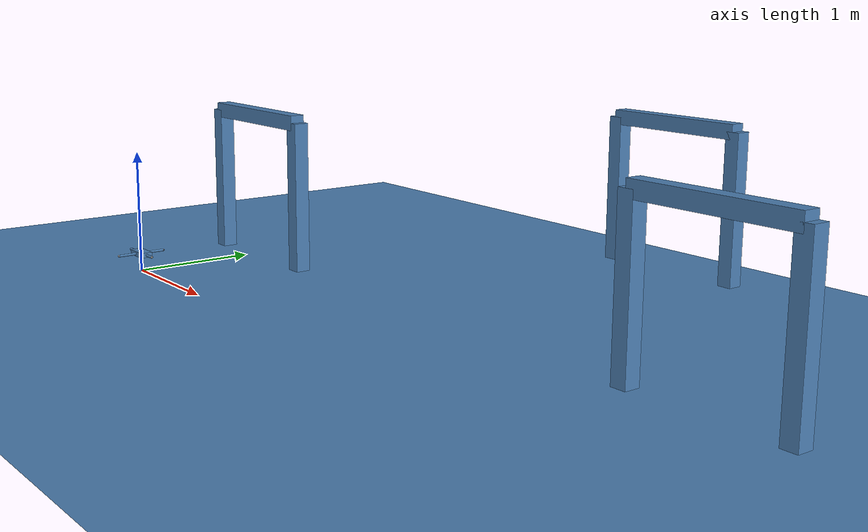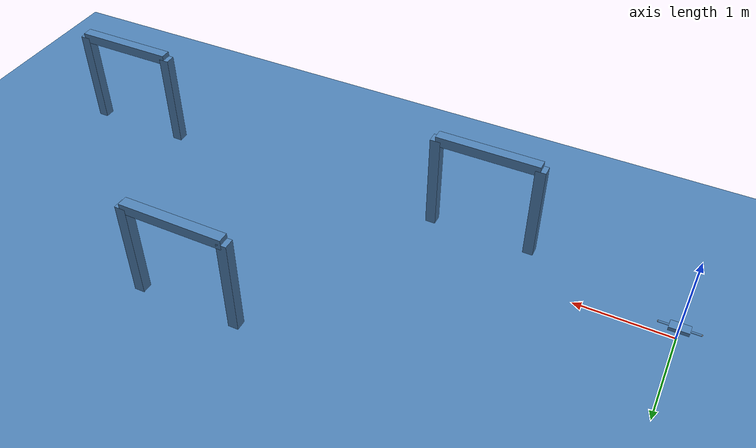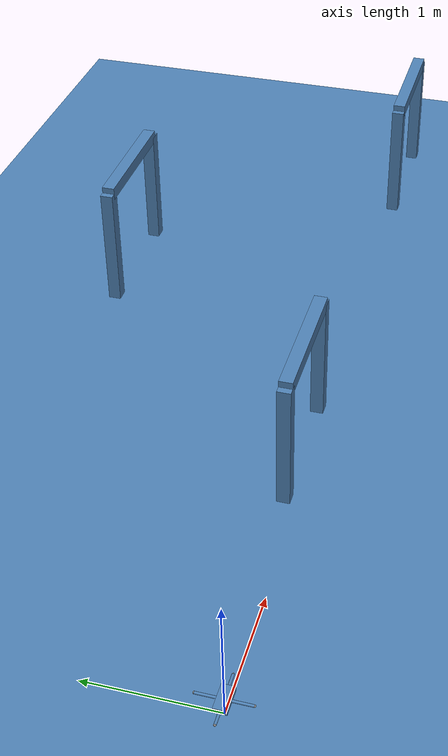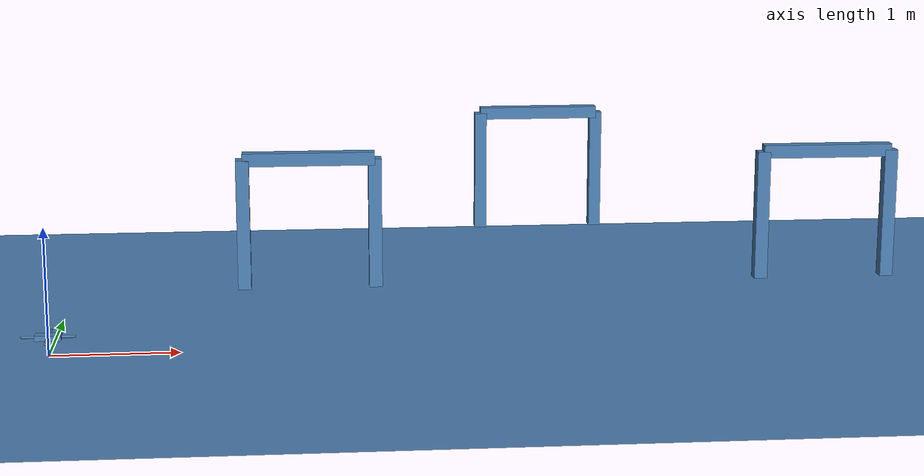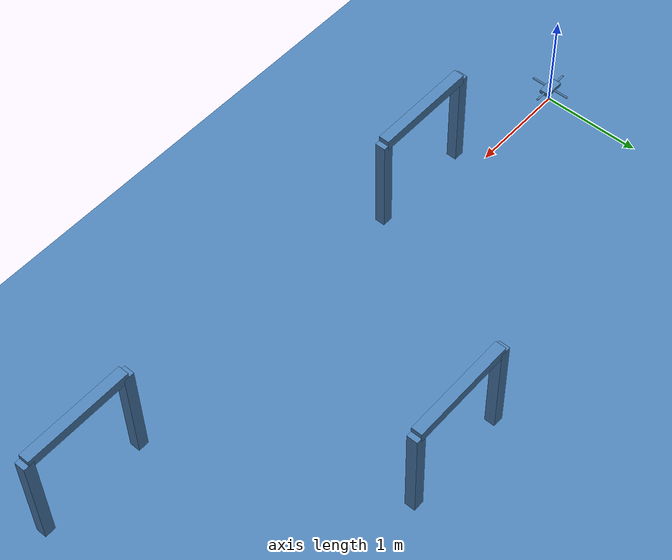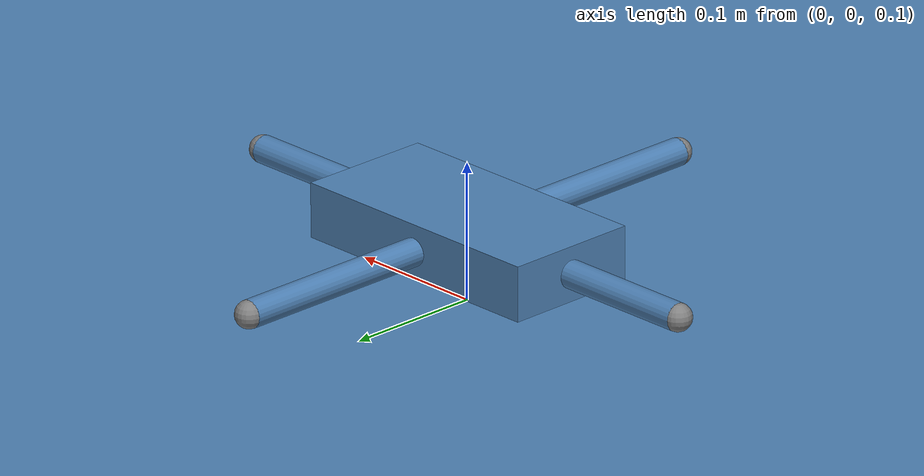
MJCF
<mujoco model="gate_crossing">
  <compiler angle="radian" meshdir="." autolimits="true"/>

  <option timestep="0.002" iterations="1" ls_iterations="4">
    <flag eulerdamp="disable"/>
  </option>

  <default>
    <joint armature="0.001" damping="0.01" limited="true"/>
    <geom contype="0" conaffinity="0" friction="0.3 0.005 0.0001" rgba="0.3 0.5 0.7 1"/>
  </default>

  <asset>
    <texture type="skybox" builtin="gradient" rgb1="0.6 0.8 1.0" rgb2="0.2 0.4 0.8" width="512" height="512"/>
    <texture name="grid" type="2d" builtin="checker" rgb1="0.9 0.9 0.9" rgb2="0.7 0.7 0.7" width="512" height="512"/>
    <material name="grid_mat" texture="grid" texrepeat="20 20" reflectance="0.1"/>
    <material name="gate_mat" rgba="0.2 0.6 0.9 0.8"/>
    <material name="goal_mat" rgba="0.2 0.8 0.2 0.5"/>
  </asset>

  <worldbody>
    <light directional="true" diffuse="0.8 0.8 0.8" specular="0.3 0.3 0.3" pos="0 0 5" dir="0 0 -1"/>
    <geom name="floor" type="plane" size="50 50 0.1" material="grid_mat"/>

    <!-- Gate 1 -->
    <body name="gate1" pos="2.0 0.0 1.0">
      <geom name="gate1_top" type="box" size="0.5 0.05 0.05" material="gate_mat" pos="0.0 0.0 0.5"/>
      <geom name="gate1_left" type="box" size="0.05 0.05 0.5" material="gate_mat" pos="-0.5 0.0 0.0"/>
      <geom name="gate1_right" type="box" size="0.05 0.05 0.5" material="gate_mat" pos="0.5 0.0 0.0"/>
    </body>

    <!-- Gate 2 -->
    <body name="gate2" pos="4.0 2.0 1.0">
      <geom name="gate2_top" type="box" size="0.5 0.05 0.05" material="gate_mat" pos="0.0 0.0 0.5"/>
      <geom name="gate2_left" type="box" size="0.05 0.05 0.5" material="gate_mat" pos="-0.5 0.0 0.0"/>
      <geom name="gate2_right" type="box" size="0.05 0.05 0.5" material="gate_mat" pos="0.5 0.0 0.0"/>
    </body>

    <!-- Gate 3 -->
    <body name="gate3" pos="6.0 0.0 1.0">
      <geom name="gate3_top" type="box" size="0.5 0.05 0.05" material="gate_mat" pos="0.0 0.0 0.5"/>
      <geom name="gate3_left" type="box" size="0.05 0.05 0.5" material="gate_mat" pos="-0.5 0.0 0.0"/>
      <geom name="gate3_right" type="box" size="0.05 0.05 0.5" material="gate_mat" pos="0.5 0.0 0.0"/>
    </body>

    <!-- Quadrotor -->
    <body name="quadrotor" pos="0.0 0.0 0.15">
      <freejoint name="root"/>
      <geom name="body_geom" type="box" size="0.1 0.05 0.02" mass="0.75"/>

      <body name="arm1" pos="0.1 0.0 0.0">
        <geom name="arm1_geom" type="cylinder" size="0.01 0.1" euler="0 1.5708 0" mass="0.05"/>
        <site name="motor1" pos="0.1 0.0 0.0" size="0.01"/>
      </body>
      <body name="arm2" pos="-0.1 0.0 0.0">
        <geom name="arm2_geom" type="cylinder" size="0.01 0.1" euler="0 1.5708 0" mass="0.05"/>
        <site name="motor2" pos="-0.1 0.0 0.0" size="0.01"/>
      </body>
      <body name="arm3" pos="0.0 0.1 0.0">
        <geom name="arm3_geom" type="cylinder" size="0.01 0.1" euler="1.5708 0 0" mass="0.05"/>
        <site name="motor3" pos="0.0 0.1 0.0" size="0.01"/>
      </body>
      <body name="arm4" pos="0.0 -0.1 0.0">
        <geom name="arm4_geom" type="cylinder" size="0.01 0.1" euler="1.5708 0 0" mass="0.05"/>
        <site name="motor4" pos="0.0 -0.1 0.0" size="0.01"/>
      </body>

      <site name="rangefinder" pos="0.0 0.0 0.0" zaxis="0 0 -1"/>
    </body>
  </worldbody>

  <actuator>
    <motor name="motor1" site="motor1" gear="0 0 1 0.1 0 0" ctrllimited="true" ctrlrange="0 3"/>
    <motor name="motor2" site="motor2" gear="0 0 1 -0.1 0 0" ctrllimited="true" ctrlrange="0 3"/>
    <motor name="motor3" site="motor3" gear="0 0 1 0 0.1 0" ctrllimited="true" ctrlrange="0 3"/>
    <motor name="motor4" site="motor4" gear="0 0 1 0 -0.1 0" ctrllimited="true" ctrlrange="0 3"/>
  </actuator>

  <sensor>
    <rangefinder name="rangefinder" site="rangefinder"/>
  </sensor>
</mujoco>
